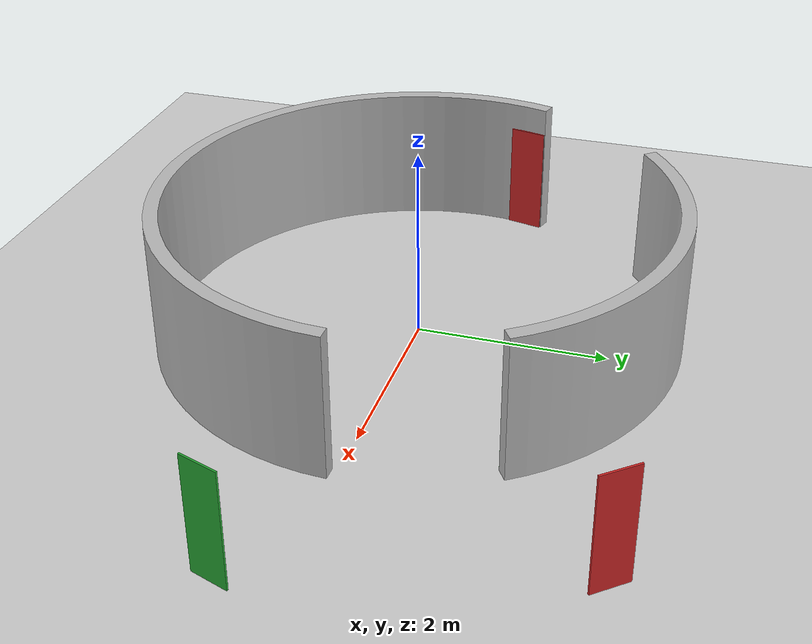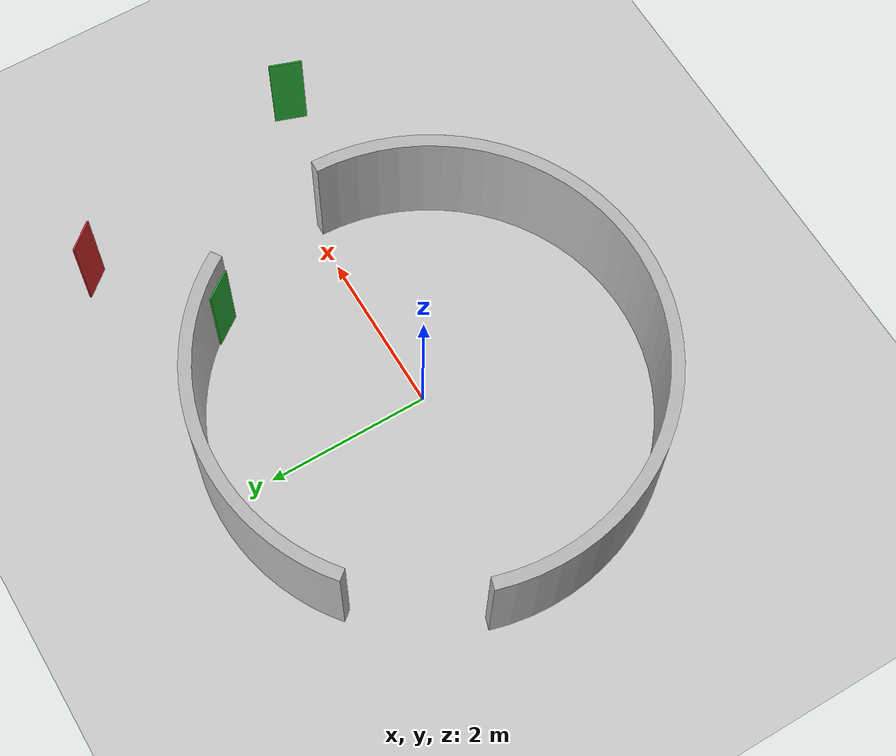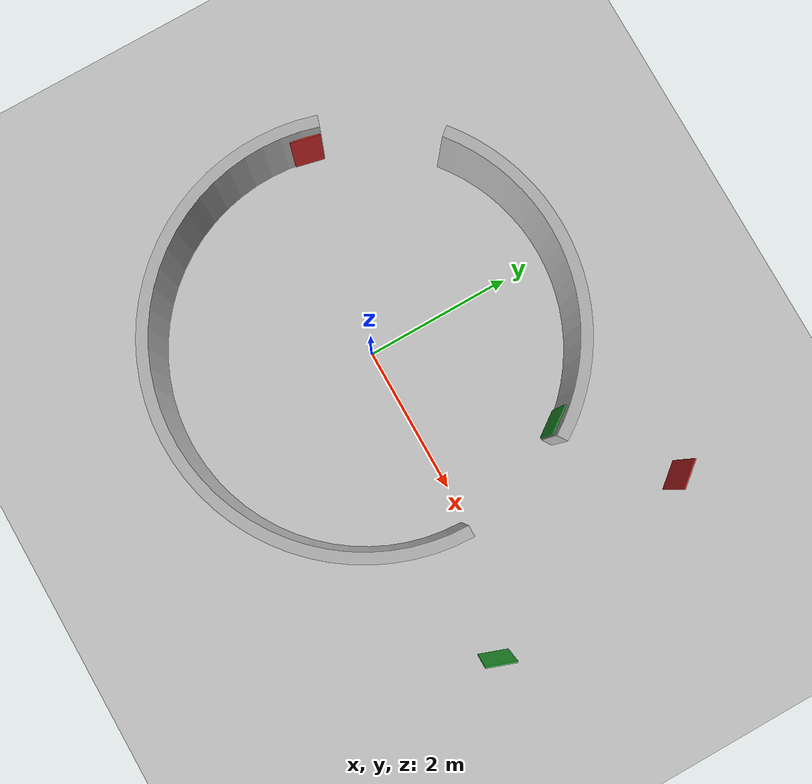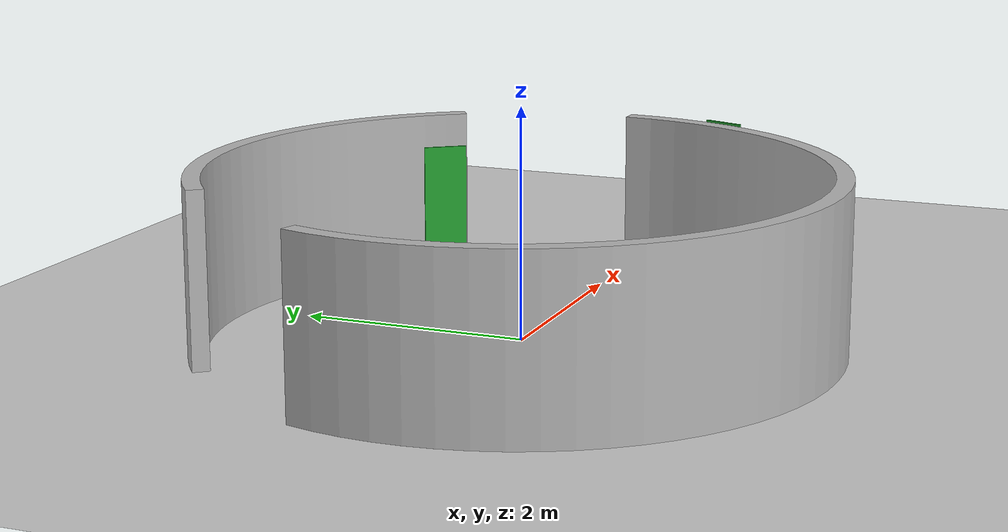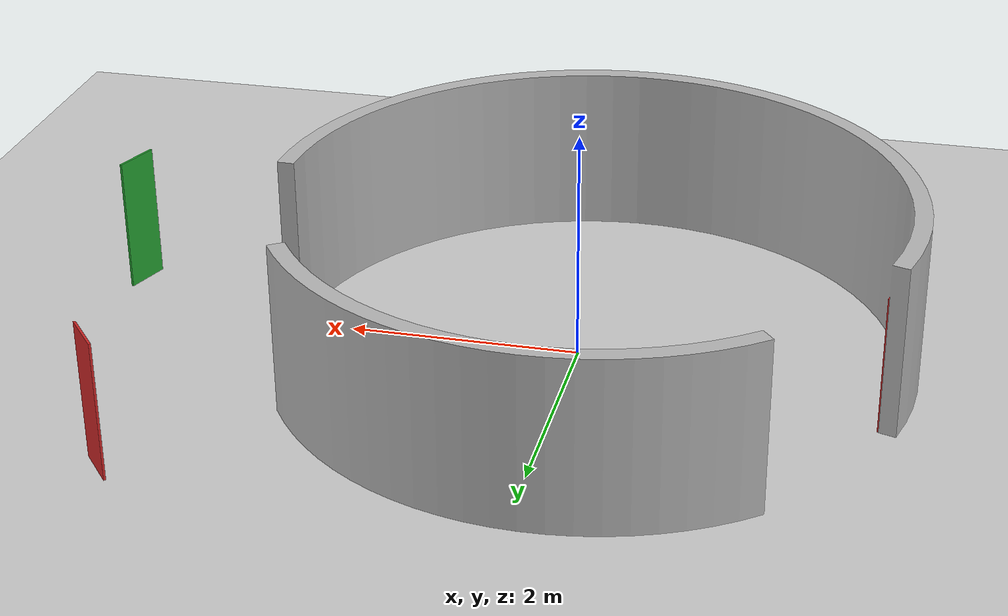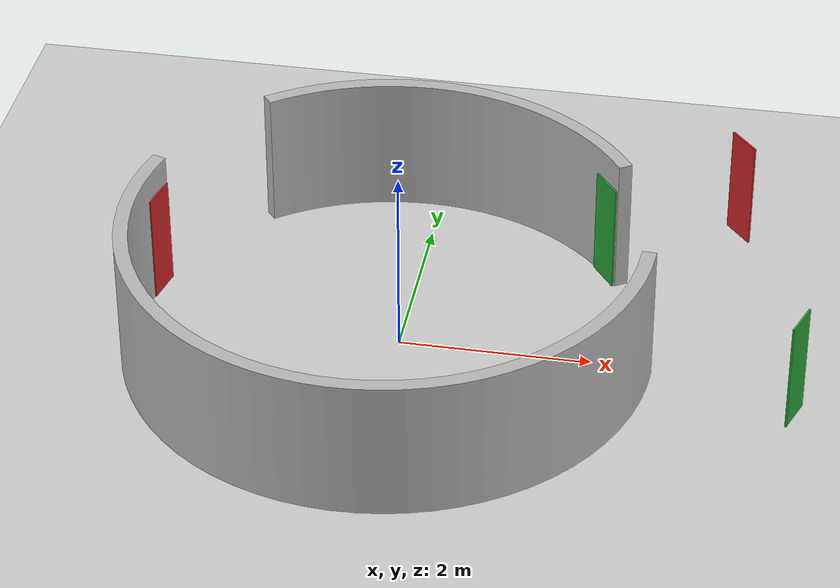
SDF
<sdf version="1.6">
 <world name="default">
  <light name="sun" type="directional">
   <pose>0 0 10 0 -0 0</pose>
   <diffuse>0.8 0.8 0.8 1</diffuse>
   <specular>0.2 0.2 0.2 1</specular>
   <attenuation>
    <range>1000</range>
    <constant>0.9</constant>
    <linear>0.01</linear>
    <quadratic>0.001</quadratic>
   </attenuation>
   <direction>-0.5 0.1 -0.9</direction>
  </light>
  <model name="ground_plane">
   <static>1</static>
   <link name="link">
    <collision name="collision">
     <geometry><plane><normal>0 0 1</normal><size>100 100</size></plane></geometry>
     <surface>
      <contact><collide_bitmask>65535</collide_bitmask></contact>
      <friction><ode><mu>100</mu><mu2>50</mu2></ode></friction>
     </surface>
    </collision>
    <visual name="visual">
     <cast_shadows>0</cast_shadows>
     <geometry><plane><normal>0 0 1</normal><size>100 100</size></plane></geometry>
     <material>
      <script><uri>file://media/materials/scripts/gazebo.material</uri><name>Gazebo/Grey</name></script>
     </material>
    </visual>
   </link>
  </model>
  <gravity>0 0 -9.8</gravity>
  <magnetic_field>6e-06 2.3e-05 -4.2e-05</magnetic_field>
  <atmosphere type="adiabatic"/>
  <physics name="default_physics" default="0" type="ode">
   <max_step_size>0.001</max_step_size>
   <real_time_factor>1</real_time_factor>
   <real_time_update_rate>1000</real_time_update_rate>
  </physics>
  <scene><ambient>0.4 0.4 0.4 1</ambient><background>0.7 0.7 0.7 1</background><shadows>1</shadows></scene>
  <audio><device>default</device></audio>
  <spherical_coordinates>
   <surface_model>EARTH_WGS84</surface_model>
   <latitude_deg>0</latitude_deg>
   <longitude_deg>0</longitude_deg>
   <elevation>0</elevation>
   <heading_deg>0</heading_deg>
  </spherical_coordinates>
  <model name="red_box">
   <static>1</static>
   <link name="box">
    <pose>0 0 0.6 0 -0 0</pose>
    <collision name="collision"><geometry><box><size>0.4 0.02 1.2</size></box></geometry></collision>
    <visual name="visual">
     <geometry><box><size>0.4 0.02 1.2</size></box></geometry>
     <material>
      <script>
       <uri>model://red_box/materials/scripts</uri>
       <uri>model://red_box/materials/textures</uri>
       <name>red_box</name>
      </script>
     </material>
    </visual>
   </link>
   <pose>-2.64636 0.542728 0 0 -0 1.3513</pose>
  </model>
  <model name="green_box">
   <static>1</static>
   <link name="box">
    <pose>0 0 0.6 0 -0 0</pose>
    <collision name="collision"><geometry><box><size>0.4 0.02 1.2</size></box></geometry></collision>
    <visual name="visual">
     <geometry><box><size>0.4 0.02 1.2</size></box></geometry>
     <material>
      <script>
       <uri>model://green_box/materials/scripts</uri>
       <uri>model://green_box/materials/textures</uri>
       <name>green_box</name>
      </script>
     </material>
    </visual>
   </link>
   <pose>1.92997 1.53562 0 0 -0 2.19966</pose>
  </model>
  <model name="green_box_0">
   <static>1</static>
   <link name="box">
    <pose>0 0 0.6 0 -0 0</pose>
    <collision name="collision"><geometry><box><size>0.4 0.02 1.2</size></box></geometry></collision>
    <visual name="visual">
     <geometry><box><size>0.4 0.02 1.2</size></box></geometry>
     <material>
      <script>
       <uri>model://green_box/materials/scripts</uri>
       <uri>model://green_box/materials/textures</uri>
       <name>green_box</name>
      </script>
     </material>
    </visual>
   </link>
   <pose>4.11878 -0.532725 0 0 -0 1.23477</pose>
  </model>
  <model name="red_box_0">
   <static>1</static>
   <link name="box">
    <pose>0 0 0.6 0 -0 0</pose>
    <collision name="collision"><geometry><box><size>0.4 0.02 1.2</size></box></geometry></collision>
    <visual name="visual">
     <geometry><box><size>0.4 0.02 1.2</size></box></geometry>
     <material>
      <script>
       <uri>model://red_box/materials/scripts</uri>
       <uri>model://red_box/materials/textures</uri>
       <name>red_box</name>
      </script>
     </material>
    </visual>
   </link>
   <pose>3.27593 2.58508 0 0 0 -0.872791</pose>
  </model>
  <model name="round_B">
   <static>1</static>
   <link name="link">
    <collision name="collision">
     <geometry><mesh><uri>model://round_B/meshes/round_B.dae</uri></mesh></geometry>
    </collision>
    <visual name="visual"><geometry><mesh><uri>model://round_B/meshes/round_B.dae</uri></mesh></geometry></visual>
   </link>
   <pose>-0.012946 -0.014157 0 0 -0 0</pose>
  </model>
 </world>
</sdf>
